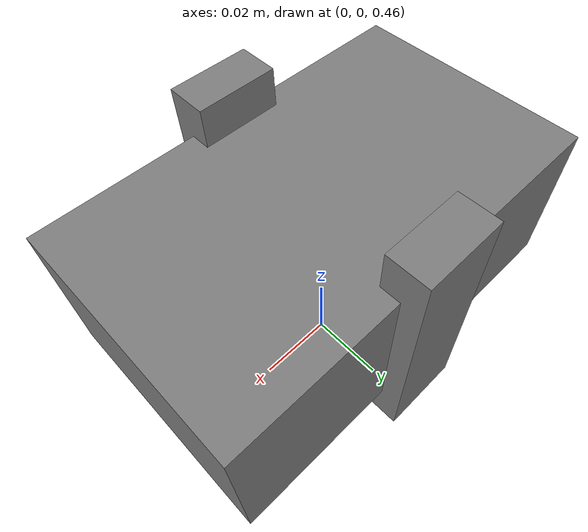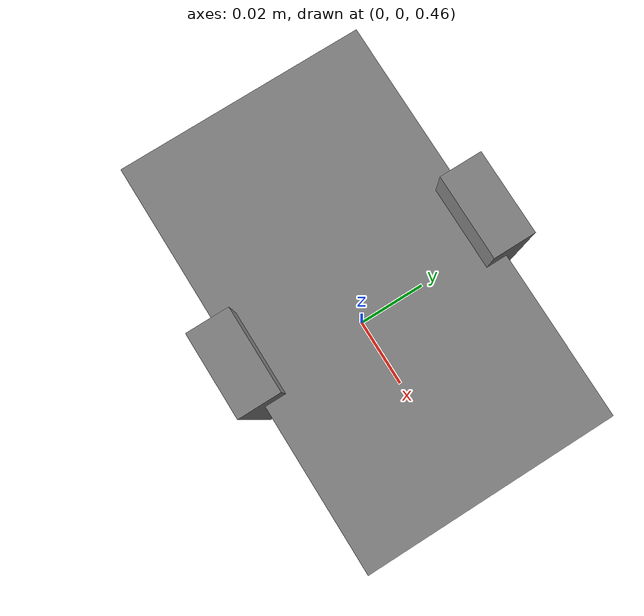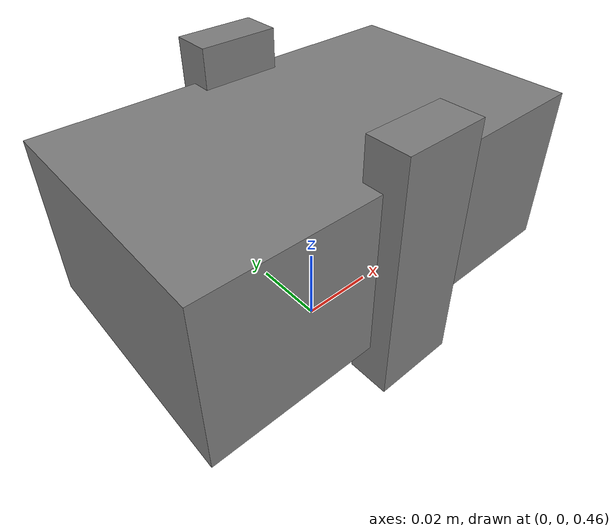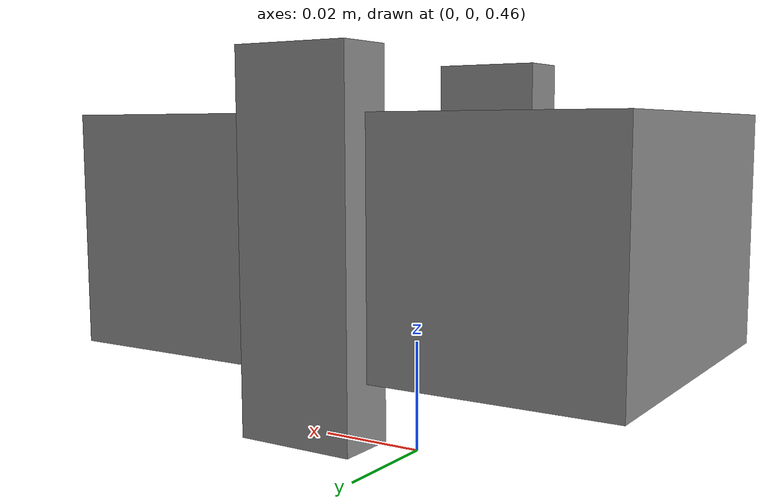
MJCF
<mujoco model="gripper">
  <compiler angle="radian"/>
  <worldbody>
    <body name="palm" pos="0 0 0.5">
      <geom type="box" size="0.05 0.03 0.02" mass="0.4"/>
      <body name="left_finger" pos="0 0.03 0">
        <joint name="left" type="slide" axis="0 1 0" range="0 0.08"/>
        <geom type="box" size="0.01 0.005 0.03" mass="0.05"/>
      </body>
      <body name="right_finger" pos="0 -0.03 0">
        <joint name="right" type="slide" axis="0 1 0" range="-0.08 0"/>
        <geom type="box" size="0.01 0.005 0.03" mass="0.05"/>
      </body>
    </body>
  </worldbody>
  <actuator>
    <motor name="grip" joint="left" gear="1"/>
  </actuator>
  <equality>
    <joint joint1="right" joint2="left" polycoef="0 -1"/>
  </equality>
</mujoco>
